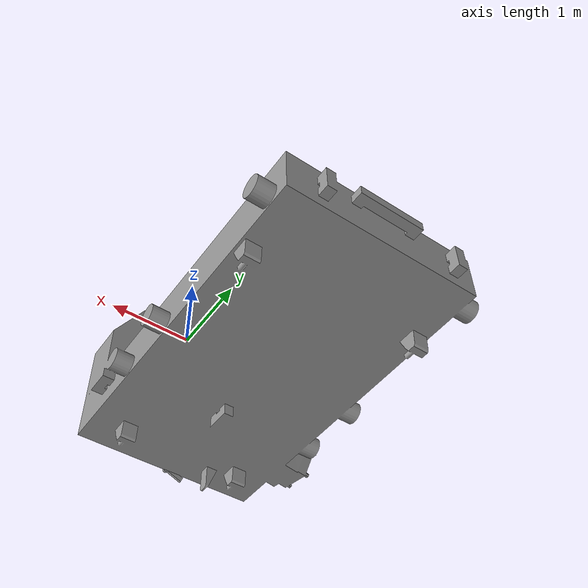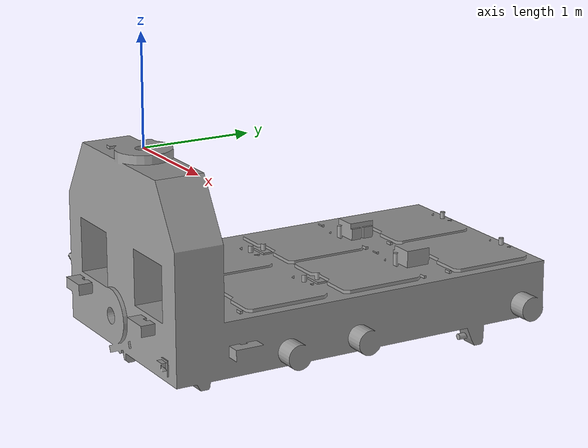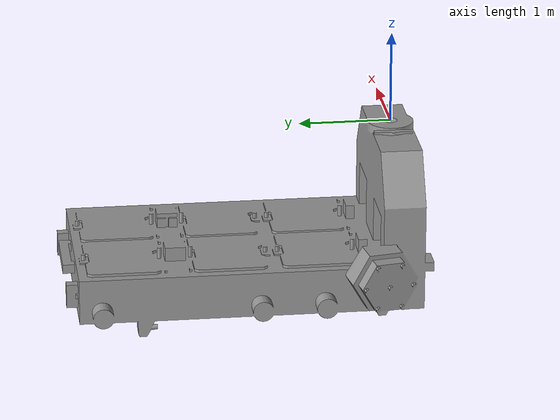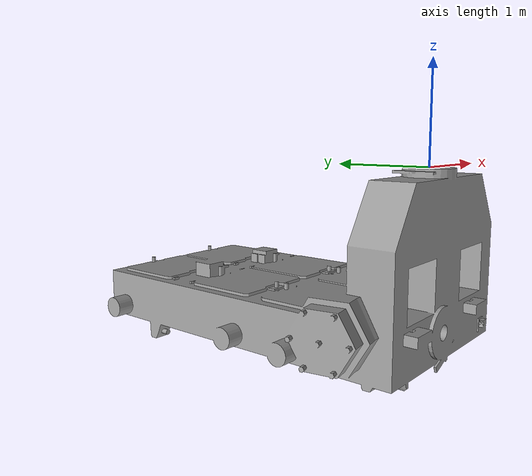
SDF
<?xml version="1.0" ?>
<sdf version="1.9">

  <model name="htv1_external_pallet">
    <static>True</static>
      <link name='base_link'>
        <inertial> <!--inertial properties of the link mass, inertia matix-->
          <mass>100.0</mass>
          <inertia>
            <ixx>0.095329</ixx>
            <ixy>0</ixy>
            <ixz>0</ixz>
            <iyy>0.381317</iyy>
            <iyz>0</iyz>
            <izz>0.476646</izz>
          </inertia>
        </inertial>
        <visual name='visual'>
          <geometry>
            <mesh>
              <scale>1 1 1</scale>
              <uri>model://htv_transfer_vehicle/meshes/htv_ep1a_1_100_v01_textured.dae</uri>
            </mesh>
          </geometry>
        </visual>
        <collision name='collision'>
          <geometry>
            <mesh>
              <scale>1 1 1</scale>
              <uri>model://htv_transfer_vehicle/meshes/htv_ep1a_1_100_v01_textured.dae</uri>
            </mesh>
          </geometry>
        </collision>
      </link>
    </model>
</sdf>
